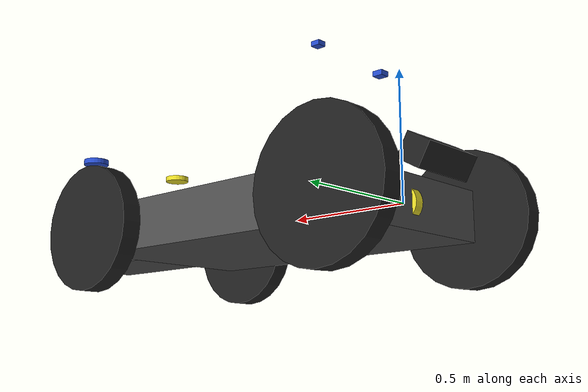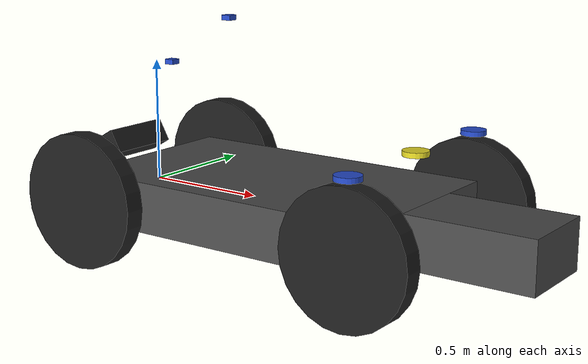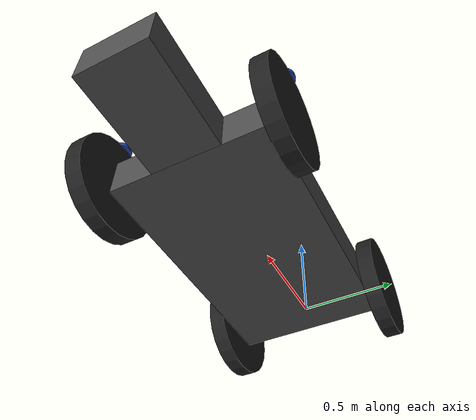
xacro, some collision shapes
<?xml version="1.0"?>
<robot name="erp42_vehicle" xmlns:xacro="http://wiki.ros.org/xacro">
  <!-- Include xacro for inertials, materials and wheels -->
  <xacro:include filename="$(find erp42_vehicle_description)/urdf/wheel.xacro"/>

  <xacro:property name="robot_namespace" value="/erp42_vehicle"/>

  <!-- Gazebo plugins -->
  <gazebo>
    <!-- Load ros_control plugin using the steer_bot_hardware_gazebo
    implementation of the hardware_interface::RobotHW -->
    <plugin name="gazebo_ros_control" filename="libgazebo_ros_control.so">
      <robotSimType>erp42_hardware_gazebo/ERP42HardwareGazebo</robotSimType>
      <legacyModeNS>false</legacyModeNS>
    </plugin>
  </gazebo>

  <!-- Math constants -->
  <xacro:property name="deg_to_rad" value="0.01745329251994329577"/>

  <!-- Robot base dimensions -->
  <xacro:property name="base_length" value="1.3317" />
  <xacro:property name="base_width" value="0.78" />
  <xacro:property name="base_height" value="0.2" />
  <xacro:property name="base_mass" value="200" />

  <!-- Nose link dimensions -->
  <xacro:property name="nose_length" value="0.5078" />
  <xacro:property name="nose_width" value="0.34" />
  <xacro:property name="nose_height" value="0.2" />
  <xacro:property name="nose_mass" value="1" />

  <!-- Wheel link dimensions -->
  <xacro:property name="front_wheel_radius" value="0.2578" />
  <xacro:property name="rear_wheel_radius" value="0.2705" />
  <xacro:property name="wheel_thickness" value="0.08" />
  <xacro:property name="wheel_mass" value="1" />

  <!-- Steering link dimensions -->
  <xacro:property name="steer_radius" value="0.05" />
  <xacro:property name="steer_thickness" value="0.02" />
  <xacro:property name="steer_mass" value="1" />

  <!-- Axle positions 0.6609-->
  <xacro:property name="axle_offset" value="0.05" />
  <xacro:property name="steer_offset" value="0.02" />
  <xacro:property name="wheel_offset" value="0.05" />
  <xacro:property name="origin_offset" value="${base_length/2-wheel_offset}" />

  <!-- Base link -->
  <link name="base_link">
    <visual>
      <origin xyz="${origin_offset} 0 0" rpy="0 0 0"/>
      <geometry>
        <box size="${base_length} ${base_width} ${base_height}"/>
      </geometry>
      <material name="dark_grey" />
    </visual>
    <collision>
      <origin xyz="${origin_offset} 0 0" rpy="0 0 0"/>
      <geometry>
        <box size="${base_length} ${base_width} ${base_height}"/>
      </geometry>
    </collision>
    <xacro:solid_cuboid_inertial
        rpy="0 0 0" xyz="${origin_offset} 0 0"
        mass="${base_mass}"
        x="${base_length}" y="${base_width}" z="${base_height}" />
  </link>

  <!-- Nose link -->
  <joint name="nose_joint" type="fixed">
    <axis xyz="1 0 0" />
    <origin xyz="${base_length/2+nose_length/2+origin_offset} 0 0" rpy="0 0 0"/>
    <parent link="base_link"/>
    <child link="nose_link"/>
   </joint>
  <link name="nose_link">
    <visual>
      <origin xyz="0 0 0" rpy="0 0 0"/>
      <geometry>
        <box size="${nose_length} ${nose_width} ${nose_height}"/>
      </geometry>
      <material name="dark_grey" />
    </visual>
    <collision>
      <origin xyz="0 0 0" rpy="0 0 0"/>
      <geometry>
        <box size="${nose_length} ${nose_width} ${nose_height}"/>
      </geometry>
    </collision>
    <xacro:solid_cuboid_inertial
        rpy="0 0 0" xyz="0 0 0"
        mass="${nose_mass}"
        x="${nose_length}" y="${nose_width}" z="${nose_height}" />
  </link>

  <!-- Front steer and rear wheel joints required for ackermann_steering_controller -->
  <xacro:front_steer
    name="front"
    parent="base"
    steer_radius="${steer_radius}"
    steer_thickness="${steer_thickness}"
    steer_mass="${steer_mass}"
    base_length="${base_length}"
    base_width="${base_width}"
    axle_offset="${axle_offset}"
    steer_height="${front_wheel_radius+steer_offset}"
    origin_offset="${origin_offset}">
  </xacro:front_steer>

  <xacro:rear_wheel
    name="rear"
    parent="base"
    wheel_radius="${rear_wheel_radius/4}"
    wheel_thickness="${wheel_thickness/2}"
    wheel_mass="${wheel_mass/32}">
    <origin xyz="${-base_length/2+wheel_offset+origin_offset} 0 0" rpy="${-90 * deg_to_rad} 0 0"/>
  </xacro:rear_wheel>

  <!-- Steerable front wheels -->
  <xacro:front_wheel_lr
    name="front_right"
    parent="base"
    reflect="-1"
    wheel_radius="${front_wheel_radius}"
    wheel_thickness="${wheel_thickness}"
    wheel_mass="${wheel_mass}"
    steer_radius="${steer_radius}"
    steer_thickness="${steer_thickness}"
    steer_mass="${steer_mass}"
    base_length="${base_length}"
    base_width="${base_width}"
    axle_offset="${axle_offset}"
    steer_height="${front_wheel_radius+steer_offset}"
    origin_offset="${origin_offset}">
  </xacro:front_wheel_lr>
  <xacro:front_wheel_lr
    name="front_left"
    parent="base"
    reflect="1"
    wheel_radius="${front_wheel_radius}"
    wheel_thickness="${wheel_thickness}"
    wheel_mass="${wheel_mass}"
    steer_radius="${steer_radius}"
    steer_thickness="${steer_thickness}"
    steer_mass="${steer_mass}"
    base_length="${base_length}"
    base_width="${base_width}"
    axle_offset="${axle_offset}"
    steer_height="${front_wheel_radius+steer_offset}"
    origin_offset="${origin_offset}">
  </xacro:front_wheel_lr>

  <!-- Rear wheels -->
  <xacro:rear_wheel_lr
    name="rear_right"
    parent="base"
    wheel_radius="${rear_wheel_radius}"
    wheel_thickness="${wheel_thickness}"
    wheel_mass="${wheel_mass}">
    <origin xyz="${-base_length/2+wheel_offset+origin_offset} ${-base_width/2-axle_offset} 0" rpy="${-90 * deg_to_rad} 0 0"/>
  </xacro:rear_wheel_lr>
  <xacro:rear_wheel_lr
    name="rear_left"
    parent="base"
    wheel_radius="${rear_wheel_radius}"
    wheel_thickness="${wheel_thickness}"
    wheel_mass="${wheel_mass}">
    <origin xyz="${-base_length/2+wheel_offset+origin_offset} ${+base_width/2+axle_offset} 0" rpy="${-90 * deg_to_rad} 0 0"/>
  </xacro:rear_wheel_lr>

  <!-- Colour -->
  <gazebo reference="base_link">
    <material>Gazebo/Grey</material>
  </gazebo>

  <!-- VLP-16 -->

  <!-- LIVOX -->

    <!-- IMU link -->
   <joint name="imu_joint" type="fixed">
    <axis xyz="0 0 1" />
    <origin xyz="${origin_offset-0.2317} 0 0.7015" rpy="0 0 0"/>
    <parent link="base_link"/>
    <child link="imu_link"/>
   </joint>
   <link name="imu_link">
    <visual>
      <origin xyz="0 0 0" rpy="0 0 0"/>
      <geometry>
        <box size="0.04 0.04 0.02"/>
      </geometry>
      <material name="blue" />
    </visual>
    <collision>
      <origin xyz="0 0 0" rpy="0 0 0"/>
      <geometry>
        <box size="0.04 0.04 0.02"/>
      </geometry>
    </collision>
   </link>

    <!-- GPS link -->
  <joint name="gps_joint" type="fixed">
    <axis xyz="0 0 1" />
    <origin xyz="${origin_offset-0.5317} 0 0.5015" rpy="0 0 0"/>
    <parent link="base_link"/>
    <child link="gps_link"/>
  </joint>
  <link name="gps_link">
    <visual>
      <origin xyz="0 0 0" rpy="0 0 0"/>
      <geometry>
        <box size="0.04 0.04 0.02"/>
      </geometry>
      <material name="blue" />
    </visual>
    <collision>
      <origin xyz="0 0 0" rpy="0 0 0"/>
      <geometry>
        <box size="0.04 0.04 0.02"/>
      </geometry>
    </collision>
  </link>

  <!-- Camera Joint -->
  <joint name="camera_joint" type="fixed">
    <axis xyz="0 1 0" />
    <origin xyz="${origin_offset-0.763} 0 0.145" rpy="0 ${30 * deg_to_rad} ${180 * deg_to_rad}"/>
    <parent link="base_link"/>
    <child link="camera_link"/>
  </joint>

  <!-- Camera Object -->
  <xacro:property name="camera_size" value="0.05" /> <!-- Size of square 'camera' box -->
  <link name="camera_link">
    <collision>
        <geometry>
            <box size=".1 .3 .1"/>
        </geometry>
        <contact_coefficients mu="0" kp="1000.0" kd="1.0"/>
    </collision>

    <visual>
        <geometry>
            <mesh filename="package://erp42_vehicle_description/meshes/sensors/kinect.dae"/>
        </geometry>
        <origin xyz="0 0 0" rpy="0 0 1.57"/>
        <material name="black"/>
    </visual>

    <inertial>
        <mass value="8.1"/>
        <inertia ixx="0.0675" ixy="0.0" ixz="0.0"
                 iyy="0.0135" iyz="0.0"
                 izz="0.0675"/>
    </inertial>
    </link>

  <!-- Camera Plugin -->

  <gazebo>
    <plugin name="imu_plugin" filename="libgazebo_ros_imu.so">
      <alwaysOn>true</alwaysOn>
      <bodyName>imu_link</bodyName>
      <topicName>imu</topicName>
      <serviceName>imu_service</serviceName>
      <gaussianNoise>0.0</gaussianNoise>
      <updateRate>20.0</updateRate>
    </plugin>
  </gazebo>

  <gazebo>
    <plugin name="gps_plugin" filename="libhector_gazebo_ros_gps.so">
      <alwaysOn>true</alwaysOn>
      <bodyName>gps_link</bodyName>
      <topicName>fix</topicName>
      <velocitytopicName>fixvelocity</velocitytopicName>
      <drift>0.0 0.0 0.0</drift>
      <gaussianNoise>0 0 0</gaussianNoise>
      <velocitydrift>0 0 0</velocitydrift>
      <velocitygaussianNoise>0 0 0</velocitygaussianNoise>
      <updateRate>10.0</updateRate>
    </plugin>
  </gazebo>

  <gazebo>
    <plugin name="gazebo_ros_p3d" filename="libgazebo_ros_p3d.so">
      <alwaysOn>true</alwaysOn>
      <updateRate>30.0</updateRate>
      <bodyName>base_link</bodyName>
      <topicName>ground_truth_pose</topicName>
      <gaussianNoise>0.0</gaussianNoise>
      <frameName>map</frameName>
    </plugin>
  </gazebo>

</robot>

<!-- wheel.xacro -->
<robot name="wheel" xmlns:xacro="http://wiki.ros.org/xacro">
  <!-- Include xacro for materials and inertials -->
  <xacro:include filename="$(find erp42_vehicle_description)/urdf/materials.xacro"/>
  <xacro:include filename="$(find erp42_vehicle_description)/urdf/inertials.xacro"/>

  <!-- Properties -->
  <xacro:property name="steer_effort" value="10.0"/>
  <xacro:property name="steer_velocity" value="5.0"/>

  <!-- Bicycle model front steering link (required for steer_drive_controller) -->
  <xacro:macro name="front_steer"
    params="
      name
      parent
      steer_radius
      steer_thickness
      steer_mass
      base_length
      base_width
      axle_offset
      steer_height
      origin_offset">
    <link name="${name}_steer_link">
      <visual>
        <origin xyz="0 0 0" rpy="0 0 0"/>
        <geometry>
          <cylinder radius="${steer_radius}" length="${steer_thickness}"/>
        </geometry>
        <material name="yellow" />
      </visual>
      <collision>
        <origin xyz="0 0 0" rpy="0 0 0"/>
        <geometry>
          <cylinder radius="${steer_radius}" length="${steer_thickness}"/>
        </geometry>
      </collision>
      <xacro:solid_cylinder_inertial
          rpy="0 0 0" xyz="0 0 0"
          mass="${steer_mass}"
          radius="${steer_radius}" length="${steer_thickness}" />
    </link>

    <joint name="${name}_steer_joint" type="revolute">
      <parent link="${parent}_link"/>
      <child link="${name}_steer_link"/>
      <origin xyz="${base_length/2-axle_offset+origin_offset} 0 ${steer_height}" rpy="0 0 0"/>
      <axis xyz="0 0 1"/>
      <limit effort="${steer_effort}"
             lower="${-180.0 * deg_to_rad}" upper="${180.0 * deg_to_rad}"
             velocity="${steer_velocity}"/>
    </joint>

    <transmission name="${name}_steer_joint_trans">
      <type>transmission_interface/SimpleTransmission</type>
      <actuator name="${name}_steer_joint_motor">
        <mechanicalReduction>1</mechanicalReduction>
        <hardwareInterface>hardware_interface/PositionJointInterface</hardwareInterface>
      </actuator>
      <joint name="${name}_steer_joint">
        <hardwareInterface>hardware_interface/PositionJointInterface</hardwareInterface>
      </joint>
    </transmission>

    <gazebo reference="${name}_steer_link">
      <material>Gazebo/Yellow</material>
    </gazebo>
  </xacro:macro>

  <!-- Car steering model front (steerable) wheel links (left/right) -->
  <xacro:macro name="front_wheel_lr"
    params="
      name
      parent
      reflect
      wheel_radius
      wheel_thickness
      wheel_mass
      steer_radius
      steer_thickness
      steer_mass
      base_length
      base_width
      axle_offset
      steer_height
      origin_offset">
    <link name="${name}_steer_link">
      <visual>
        <origin xyz="0 0 0" rpy="0 0 0"/>
        <geometry>
          <cylinder radius="${steer_radius}" length="${steer_thickness}"/>
        </geometry>
        <material name="blue" />
      </visual>
      <collision>
        <origin xyz="0 0 0" rpy="0 0 0"/>
        <geometry>
          <cylinder radius="${steer_radius}" length="${steer_thickness}"/>
        </geometry>
      </collision>
      <xacro:solid_cylinder_inertial
          rpy="0 0 0" xyz="0 0 0"
          mass="${steer_mass}"
          radius="${steer_radius}" length="${steer_thickness}" />
    </link>
<!--should be modified! -->
    <joint name="${name}_steer_joint" type="revolute">
      <parent link="${parent}_link"/>
      <child link="${name}_steer_link"/>
      <origin xyz="${base_length/2-axle_offset+origin_offset} ${reflect*(base_width/2+axle_offset)} ${steer_height}" rpy="0 0 0"/>
      <axis xyz="0 0 1"/>
      <limit effort="${steer_effort}"
             lower="${-20.0 * deg_to_rad}" upper="${20.0 * deg_to_rad}"
             velocity="${steer_velocity}"/>
    </joint>

    <link name="${name}_wheel_link">
      <visual>
        <origin xyz="0 0 0" rpy="0 0 0"/>
        <geometry>
          <cylinder radius="${wheel_radius}" length="${wheel_thickness}"/>
        </geometry>
        <material name="black" />
      </visual>
      <collision>
        <origin xyz="0 0 0" rpy="0 0 0"/>
        <geometry>
          <cylinder radius="${wheel_radius}" length="${wheel_thickness}"/>
        </geometry>
      </collision>
      <xacro:solid_cylinder_inertial
          rpy="0 0 0" xyz="0 0 0"
          mass="${wheel_mass}"
          radius="${wheel_radius}" length="${wheel_thickness}" />
    </link>

    <joint name="${name}_wheel_joint" type="continuous">
      <parent link="${name}_steer_link"/>
      <child link="${name}_wheel_link"/>
      <origin xyz="0 0 ${-steer_height}" rpy="${-90 * deg_to_rad} 0 0"/>
      <axis xyz="0 0 1"/>
    </joint>

    <transmission name="${name}_steer_joint_trans">
      <type>transmission_interface/SimpleTransmission</type>
      <actuator name="${name}_steer_joint_motor">
        <mechanicalReduction>1</mechanicalReduction>
        <hardwareInterface>hardware_interface/PositionJointInterface</hardwareInterface>
      </actuator>
      <joint name="${name}_steer_joint">
        <hardwareInterface>hardware_interface/PositionJointInterface</hardwareInterface>
      </joint>
    </transmission>

    <transmission name="${name}_wheel_joint_trans">
      <type>transmission_interface/SimpleTransmission</type>
      <actuator name="${name}_wheel_joint_motor">
        <mechanicalReduction>1</mechanicalReduction>
        <hardwareInterface>hardware_interface/VelocityJointInterface</hardwareInterface>
      </actuator>
      <joint name="${name}_wheel_joint">
        <hardwareInterface>hardware_interface/VelocityJointInterface</hardwareInterface>
      </joint>
    </transmission>

    <gazebo reference="${name}_steer_link">
      <material>Gazebo/Grey</material>
    </gazebo>

    <gazebo reference="${name}_wheel_link">
      <material>Gazebo/Black</material>
    </gazebo>
  </xacro:macro>

  <!-- Bicycle model rear wheel link (required for steer_drive_controller) -->
  <xacro:macro name="rear_wheel"
    params="
      name
      parent
      wheel_radius
      wheel_thickness
      wheel_mass
      *origin">
    <link name="${name}_wheel_link">
      <visual>
        <origin xyz="0 0 0" rpy="0 0 0"/>
        <geometry>
          <cylinder radius="${wheel_radius}" length="${wheel_thickness}"/>
        </geometry>
        <material name="yellow" />
      </visual>
      <collision>
        <origin xyz="0 0 0" rpy="0 0 0"/>
        <geometry>
          <cylinder radius="${wheel_radius}" length="${wheel_thickness}"/>
        </geometry>
      </collision>
      <xacro:solid_cylinder_inertial
          rpy="0 0 0" xyz="0 0 0"
          mass="${wheel_mass}"
          radius="${wheel_radius}" length="${wheel_thickness}" />
    </link>

    <joint name="${name}_wheel_joint" type="continuous">
      <parent link="${parent}_link"/>
      <child link="${name}_wheel_link"/>
      <xacro:insert_block name="origin"/>
      <axis xyz="0 0 1"/>
    </joint>

    <transmission name="${name}_wheel_joint_trans">
      <type>transmission_interface/SimpleTransmission</type>
      <actuator name="${name}_wheel_joint_motor">
        <mechanicalReduction>1</mechanicalReduction>
        <hardwareInterface>hardware_interface/VelocityJointInterface</hardwareInterface>
      </actuator>
      <joint name="${name}_wheel_joint">
        <hardwareInterface>hardware_interface/VelocityJointInterface</hardwareInterface>
      </joint>
    </transmission>

    <gazebo reference="${name}_wheel_link">
      <material>Gazebo/Yellow</material>
    </gazebo>
  </xacro:macro>

  <!-- Bicycle model front wheel link (passive - no transmission) -->
  <xacro:macro name="front_wheel"
    params="
      name
      parent
      wheel_radius
      wheel_thickness
      wheel_mass
      *origin">
    <link name="${name}_wheel_link">
      <visual>
        <origin xyz="0 0 0" rpy="0 0 0"/>
        <geometry>
          <cylinder radius="${wheel_radius}" length="${wheel_thickness}"/>
        </geometry>
        <material name="yellow" />
      </visual>
      <collision>
        <origin xyz="0 0 0" rpy="0 0 0"/>
        <geometry>
          <cylinder radius="${wheel_radius}" length="${wheel_thickness}"/>
        </geometry>
      </collision>
      <xacro:solid_cylinder_inertial
          rpy="0 0 0" xyz="0 0 0"
          mass="${wheel_mass}"
          radius="${wheel_radius}" length="${wheel_thickness}" />
    </link>

    <joint name="${name}_wheel_joint" type="continuous">
      <parent link="${parent}_link"/>
      <child link="${name}_wheel_link"/>
      <xacro:insert_block name="origin"/>
      <axis xyz="0 0 1"/>
    </joint>

    <gazebo reference="${name}_wheel_link">
      <material>Gazebo/Yellow</material>
    </gazebo>

    <gazebo reference="${name}_wheel_joint">
      <provideFeedback>true</provideFeedback>
    </gazebo>
  </xacro:macro>

  <!-- Car steering model rear wheel links (left/right) -->
  <xacro:macro name="rear_wheel_lr"
    params="
      name
      parent
      wheel_radius
      wheel_thickness
      wheel_mass
      *origin">
    <link name="${name}_wheel_link">
      <visual>
        <origin xyz="0 0 0" rpy="0 0 0"/>
        <geometry>
          <cylinder radius="${wheel_radius}" length="${wheel_thickness}"/>
        </geometry>
        <material name="black" />
      </visual>
      <collision>
        <origin xyz="0 0 0" rpy="0 0 0"/>
        <geometry>
          <cylinder radius="${wheel_radius}" length="${wheel_thickness}"/>
        </geometry>
      </collision>
      <xacro:solid_cylinder_inertial
          rpy="0 0 0" xyz="0 0 0"
          mass="${wheel_mass}"
          radius="${wheel_radius}" length="${wheel_thickness}" />
    </link>

    <joint name="${name}_wheel_joint" type="continuous">
      <parent link="${parent}_link"/>
      <child link="${name}_wheel_link"/>
      <xacro:insert_block name="origin"/>
      <axis xyz="0 0 1"/>
    </joint>

    <transmission name="${name}_wheel_joint_trans">
      <type>transmission_interface/SimpleTransmission</type>
      <actuator name="${name}_wheel_joint_motor">
        <mechanicalReduction>1</mechanicalReduction>
        <hardwareInterface>hardware_interface/VelocityJointInterface</hardwareInterface>
      </actuator>
      <joint name="${name}_wheel_joint">
        <hardwareInterface>hardware_interface/VelocityJointInterface</hardwareInterface>
      </joint>
    </transmission>

    <gazebo reference="${name}_wheel_link">
      <material>Gazebo/Black</material>
    </gazebo>
  </xacro:macro>
</robot>
